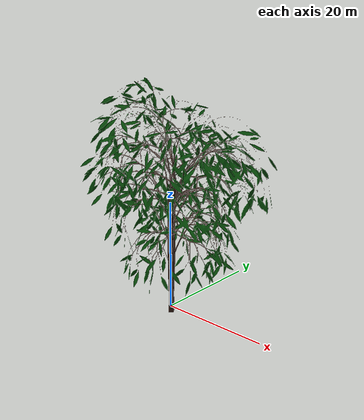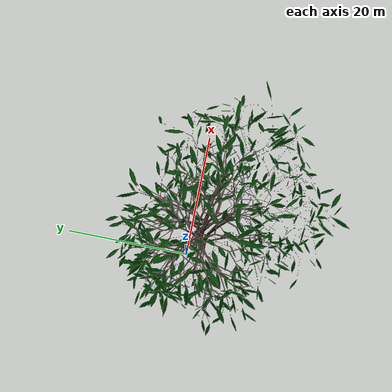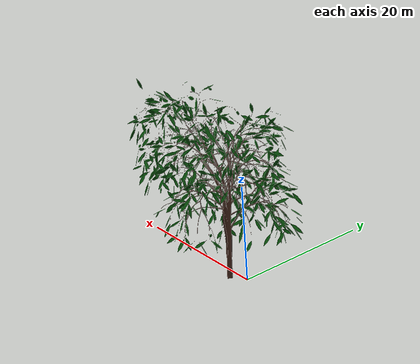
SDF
<?xml version="1.0"?>
<sdf version="1.5">
  <model name="Tree">
    <pose>2 -2 0.5 0 -0 0</pose>
    <link name="link">
      <pose>0 0 0 0 -0 0</pose>
      <gravity>1</gravity>
      <self_collide>0</self_collide>
      <kinematic>0</kinematic>
      <visual name="visual">
        <pose>0 0 0 0 -0 0</pose>
        <geometry>
          <mesh>
            <uri>model://tree/meshes/tree.dae</uri>
            <scale>5 5 5</scale>
          </mesh>
        </geometry>
      </visual>
      <collision name="collision">
        <geometry>
          <mesh>
            <uri>model://tree/meshes/tree.dae</uri>
            <scale>5 5 5</scale>
          </mesh>
        </geometry>
        <pose>0 0 0 0 -0 0</pose>
      </collision>
    </link>
    <static>0</static>
    <allow_auto_disable>1</allow_auto_disable>
  </model>
</sdf>
